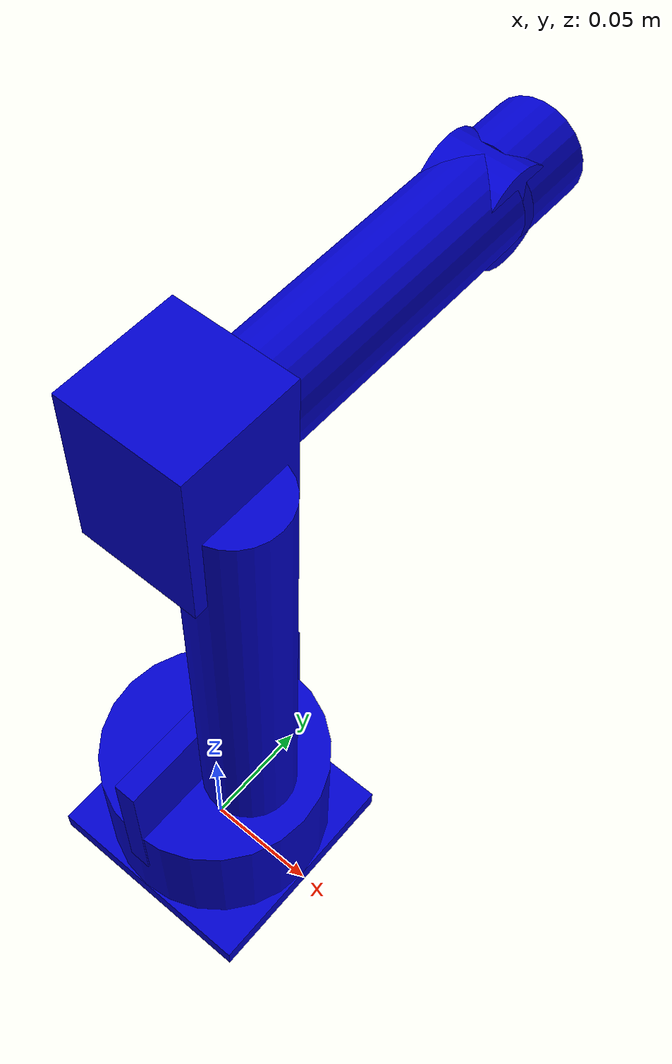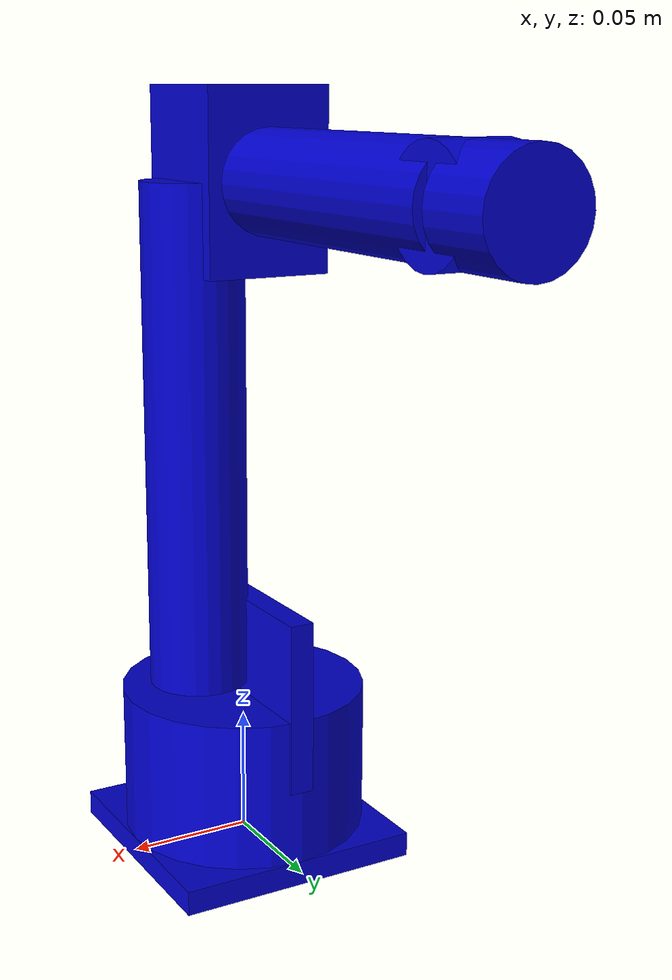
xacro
<?xml version="1.0"?>
<robot name="sainsmart" xmlns:xacro="http://ros.org/wiki/xacro">

  <!-- constants -->
  <xacro:property name="pi" value="3.1415" />

<!-- arm properties -->

  <xacro:property name="main_base_width" value="0.05" />
  <xacro:property name="main_base_bodylen" value="0.06" />
  <xacro:property name="main_base_dims" value="0.1" />
  <xacro:property name="main_base_height" value="0.01" />

  <xacro:property name="arm_support_height" value="0.07" />
  <xacro:property name="arm_support_width" value="0.07" />

  <xacro:property name="base_arm_len" value="0.2" />
  <xacro:property name="base_arm_width" value="0.02" />

  <xacro:property name="forearm_len" value="0.15" />
  <xacro:property name="forearm_width" value="0.02" />

  <xacro:property name="wrist_len" value="0.03" />
  <xacro:property name="wrist_width" value="0.02" />

  <xacro:property name="interface_len" value="0.03" />
  <xacro:property name="interface_width" value="0.02" />

  <!-- Materials -->

  <material name="blue">
    <color rgba="0 0 0.8 1"/>
  </material>

  <material name="white">
    <color rgba="1 1 1 1"/>
  </material>

  <!-- Macros -->

  <xacro:macro name="default_inertial" params="mass">
    <inertial>
      <mass value="${mass}" />
      <inertia ixx="1.0" ixy="0.0" ixz="0.0" iyy="1.0" iyz="0.0" izz="1.0" />
    </inertial>
  </xacro:macro>

<!-- Wrist -->

  <link name="interface">
    <visual>
      <geometry>
        <cylinder radius="${interface_width }" length="${interface_len}"/>
      </geometry>
      <material name="blue"/>
      <origin xyz=" 0 0 0" rpy=" ${pi/2} 0     0 "/>
    </visual>
    <collision>
      <geometry>
        <cylinder radius="${interface_width}" length="${interface_len}"/>
      </geometry>
    </collision>
    <xacro:default_inertial mass="10"/>
  </link>

  <joint name="interface" type="revolute">
    <axis xyz="0 1 0" rpy="${pi/2} 0   0" />
    <limit effort="0.0001" velocity="0.0001" lower="-2.2" upper="1.7"/>
    <parent link="wrist"/>
    <child link="interface"/>
    <origin xyz="0  ${wrist_width}  0"/>
  </joint>

<!-- Wrist -->

  <link name="wrist">
    <visual>
      <geometry>
        <cylinder radius="${wrist_width }" length="${wrist_len}"/>
      </geometry>
      <material name="blue"/>
      <origin xyz=" 0 0 0" rpy="  0 ${pi/2} 0 "/>
    </visual>
    <collision>
      <geometry>
        <cylinder radius="${wrist_width}" length="${wrist_len}"/>
      </geometry>
    </collision>
    <xacro:default_inertial mass="10"/>
  </link>

  <joint name="wrist" type="continuous">
    <axis xyz="1 0 0" rpy="0  ${pi/4} 0" />
    <parent link="forearm"/>
    <child link="wrist"/>
    <origin xyz="0  ${forearm_len}  0"/>
  </joint>

<!-- Forearm -->

  <link name="forearm">
    <visual>
      <geometry>
        <cylinder radius="${forearm_width }" length="${forearm_len}"/>
      </geometry>
      <material name="blue"/>
      <origin xyz=" 0 ${forearm_len/2} 0" rpy="${pi/2}  0 0 "/>
    </visual>
    <collision>
      <geometry>
        <cylinder radius="${forearm_width }" length="${forearm_len}"/>
      </geometry>
    </collision>
    <xacro:default_inertial mass="10"/>
  </link>

  <joint name="roll" type="continuous">
    <axis xyz=" 0 1  0" rpy="0 0 0" />
    <parent link="elbow"/>
    <child link="forearm"/>
    <origin xyz="0 0 0"/>
  </joint>

  <link name="elbow">
    <visual>
      <geometry>
        <box size="0.05 0.05 ${arm_support_height}"/>
      </geometry>
      <material name="blue"/>
      <origin xyz="0 0 0"/>

    </visual>
    <collision>
      <geometry>
        <box size="${main_base_dims} ${main_base_dims} ${main_base_dims}"/>
      </geometry>
    </collision>
    <xacro:default_inertial mass="10"/>
  </link>

  <joint name="eblow" type="continuous">
    <axis xyz="1 0 0" rpy="0 0 0" />

    <parent link="base_arm"/>
    <child link="elbow"/>
    <origin xyz="0 0 ${ base_arm_len }"/>
  </joint>

  <link name="base_arm">
    <visual>
      <geometry>
        <cylinder radius="${base_arm_width}" length="${base_arm_len}"/>
      </geometry>
      <material name="blue"/>
      <origin xyz="${base_arm_width} 0 ${ base_arm_len/2}"/>

    </visual>
    <collision>
      <geometry>
        <cylinder radius="${main_base_width}" length="${main_base_bodylen}"/>
      </geometry>
    </collision>
    <xacro:default_inertial mass="10"/>
  </link>

  <joint name="shoulder" type="continuous">
    <axis xyz="1 0 0" rpy="0 0 0" />

    <parent link="base_arm_support"/>
    <child link="base_arm"/>
    <origin xyz="0 0 ${(main_base_bodylen + main_base_height )}"/>
  </joint>

  <link name="base_arm_support">
    <visual>
      <geometry>
        <box size="0.01 0.1 ${arm_support_height}"/>
      </geometry>
      <material name="blue"/>
      <origin xyz="0 0 ${(main_base_bodylen ) + main_base_height }"/>

    </visual>
    <collision>
      <geometry>
        <box size="${main_base_dims} ${main_base_dims} ${main_base_dims}"/>
      </geometry>
    </collision>
    <xacro:default_inertial mass="10"/>
  </link>

  <joint name="support" type="fixed">
    <axis xyz="0 0 1" rpy="0 0 0" />

    <parent link="main_base"/>
    <child link="base_arm_support"/>
    <origin xyz="0 0 0"/>
  </joint>

  <link name="main_base">
    <visual>
      <geometry>
        <cylinder radius="${main_base_width}" length="${main_base_bodylen}"/>
      </geometry>
      <material name="blue"/>
      <origin xyz="0 0 ${(main_base_bodylen/2.0) + (main_base_height/2.0) }"/>

    </visual>
    <collision>
      <geometry>
        <cylinder radius="${main_base_width}" length="${main_base_bodylen}"/>
      </geometry>
    </collision>
    <xacro:default_inertial mass="10"/>
  </link>

  <link name="base_link">
    <visual>
      <geometry>
        <box size="${main_base_dims} ${main_base_dims} ${main_base_height}"/>
      </geometry>
      <material name="blue"/>
      <origin xyz="0 0 0"/>

    </visual>
    <collision>
      <geometry>
        <box size="${main_base_dims} ${main_base_dims} ${main_base_dims}"/>
      </geometry>
    </collision>
    <xacro:default_inertial mass="10"/>
  </link>

  <joint name="bottom" type="continuous">
    <axis xyz="0 0 1" rpy="0 0 0" />

    <parent link="base_link"/>
    <child link="main_base"/>
    <origin xyz="0 0 0"/>
  </joint>

</robot>
